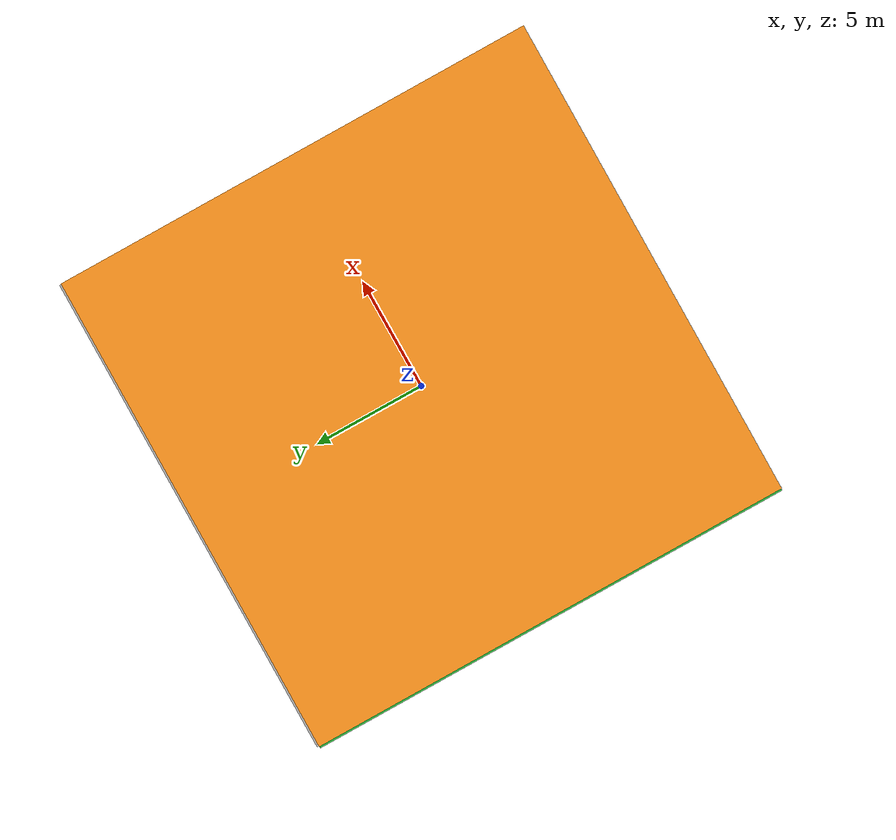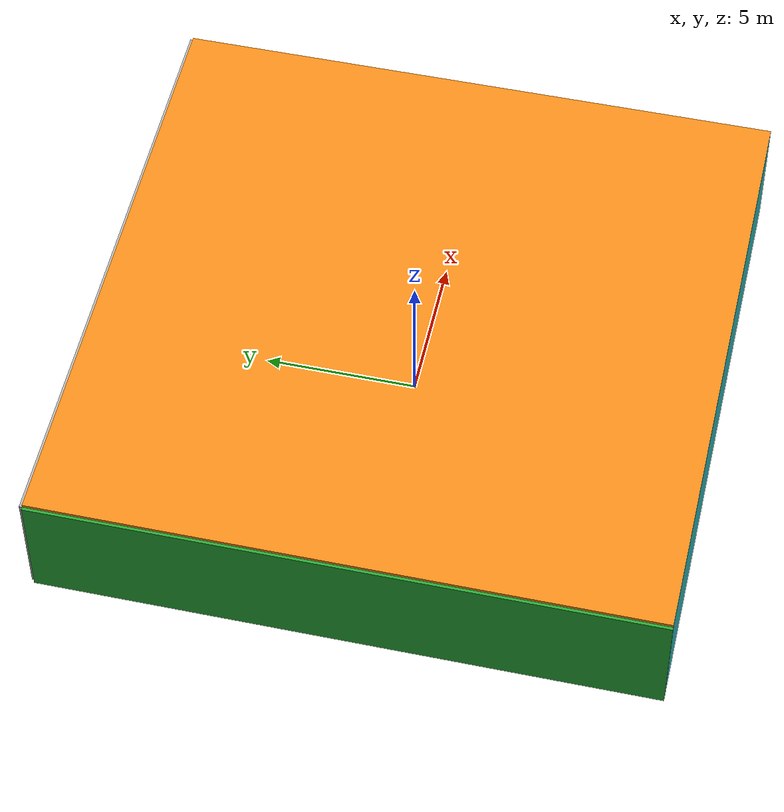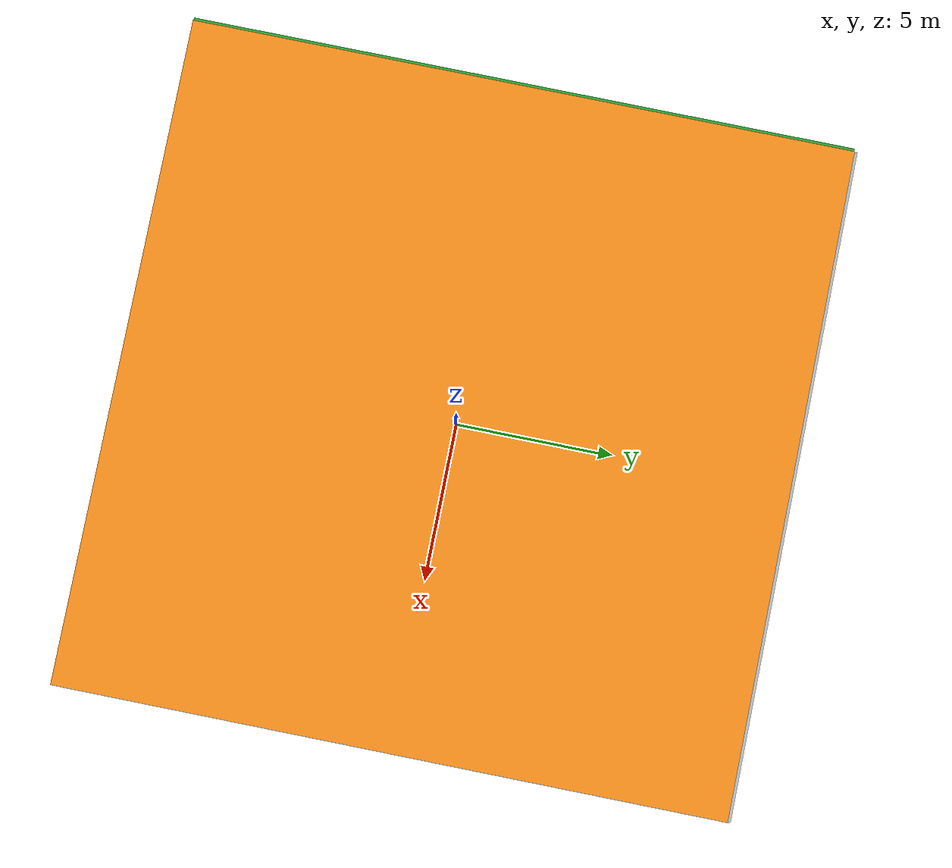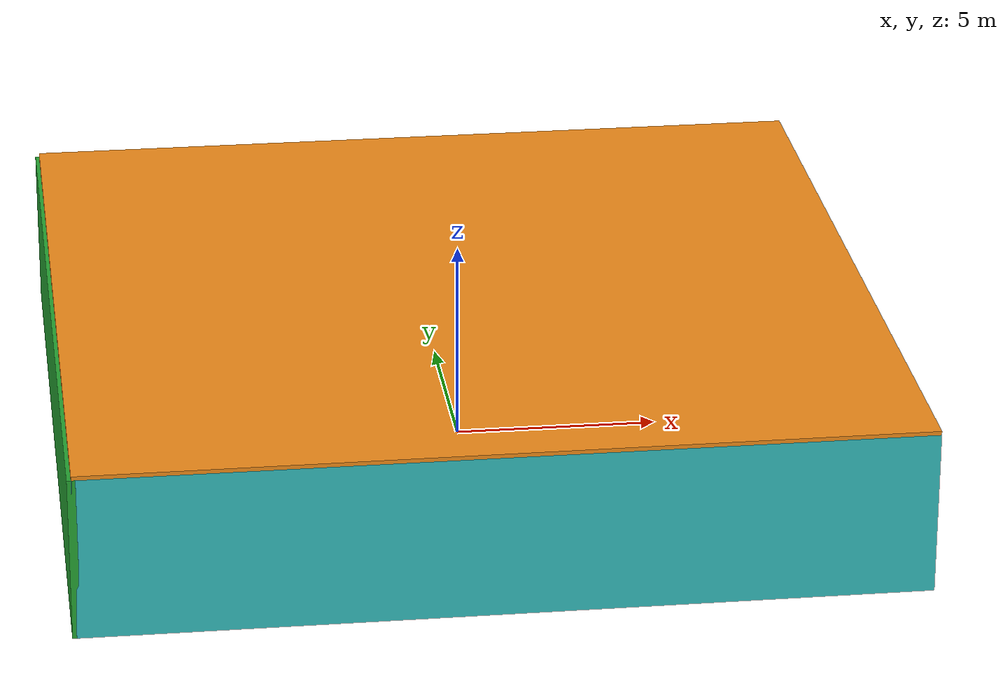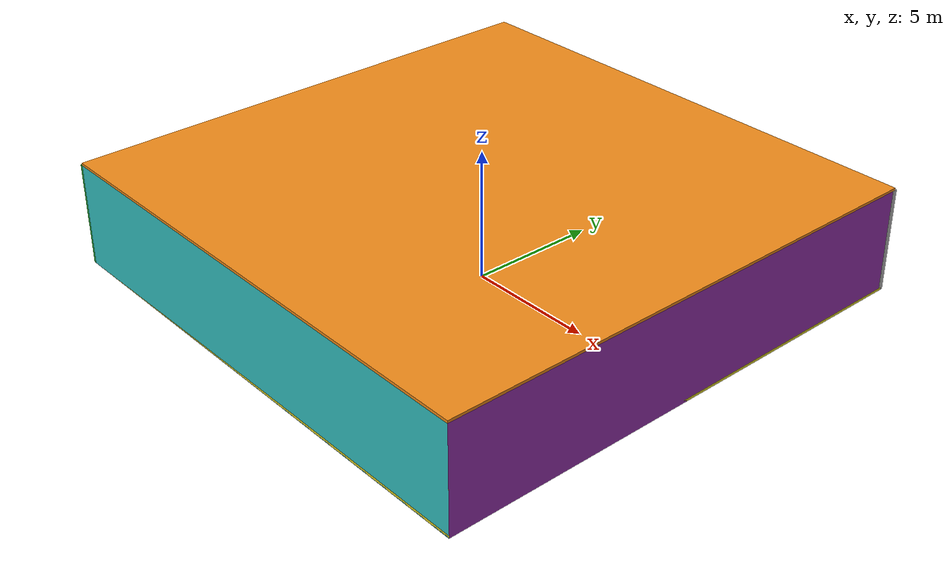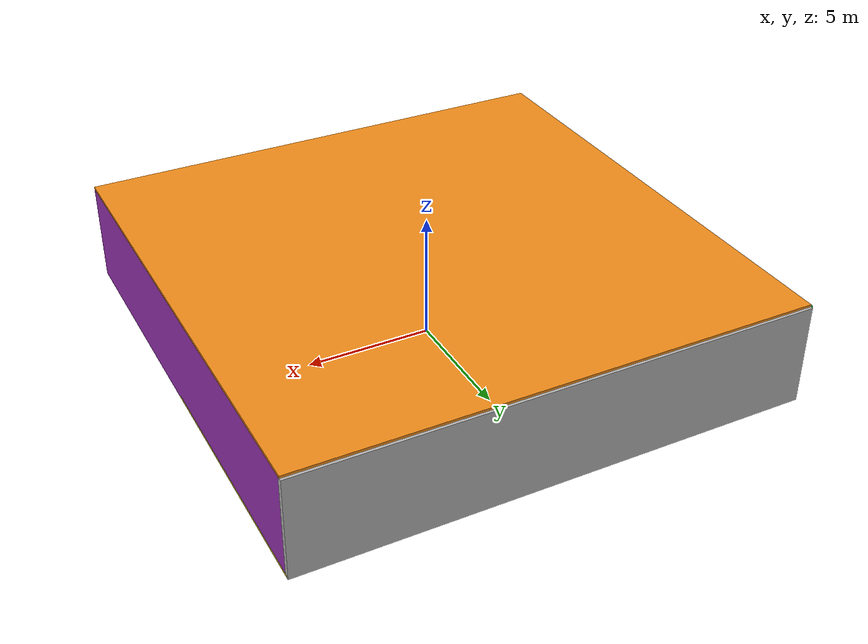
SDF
<sdf version="1.4">
 <world name="default">
  <physics type="ode">
   <max_step_size>0.001</max_step_size>
   <real_time_factor>1</real_time_factor>
   <real_time_update_rate>1000</real_time_update_rate>
   <gravity>0 0 -9.8</gravity>
  </physics>
  <scene><ambient>0.4 0.4 0.4 1</ambient><background>0.7 0.7 0.7 1</background><shadows>1</shadows></scene>
  <model name="Surrounding">
   <static>1</static>
   <link name="Ceiling">
    <collision name="Ceiling_Collision"><geometry><box><size>20 20 0.1</size></box></geometry></collision>
    <visual name="Ceiling_Visual">
     <geometry><box><size>20 20 0.1</size></box></geometry>
     <material>
      <script><uri>file://media/materials/scripts/gazebo.material</uri><name>Gazebo/Orange</name></script>
     </material>
    </visual>
    <pose>0 0 4.05 0 0 0</pose>
   </link>
   <link name="Wall_South">
    <collision name="Wall_South_Collision">
     <geometry><box><size>20 0 4</size></box></geometry>
     <pose>0 0 2 0 -0 0</pose>
    </collision>
    <visual name="Wall_South_Visual">
     <pose>0 0 2 0 -0 0</pose>
     <geometry><box><size>20 0 4</size></box></geometry>
     <material>
      <script><uri>file://media/materials/scripts/gazebo.material</uri><name>Gazebo/Turquoise</name></script>
     </material>
    </visual>
    <velocity_decay><linear>0</linear><angular>0</angular></velocity_decay>
    <pose>0 -10 0 0 -0 0</pose>
   </link>
   <link name="Wall_East">
    <collision name="Wall_21_Collision">
     <geometry><box><size>20 0 4</size></box></geometry>
     <pose>0 0 2 0 -0 0</pose>
    </collision>
    <visual name="Wall_21_Visual">
     <pose>0 0 2 0 -0 0</pose>
     <geometry><box><size>20 0 4</size></box></geometry>
     <material>
      <script><uri>file://media/materials/scripts/gazebo.material</uri><name>Gazebo/Purple</name></script>
     </material>
    </visual>
    <velocity_decay><linear>0</linear><angular>0</angular></velocity_decay>
    <pose>10 0 0 0 -0 1.5708</pose>
   </link>
   <link name="Wall_North">
    <collision name="Wall_22_Collision">
     <geometry><box><size>20 0.2 4</size></box></geometry>
     <pose>0 0 2 0 -0 0</pose>
    </collision>
    <visual name="Wall_22_Visual">
     <pose>0 0 2 0 -0 0</pose>
     <geometry><box><size>20 0.2 4</size></box></geometry>
     <material>
      <script><uri>file://media/materials/scripts/gazebo.material</uri><name>Gazebo/LightOn</name></script>
     </material>
    </visual>
    <velocity_decay><linear>0</linear><angular>0</angular></velocity_decay>
    <pose>0 10 0 0 -0 0</pose>
   </link>
   <link name="Wall_West">
    <collision name="Wall_23_Collision">
     <geometry><box><size>20 0.2 4</size></box></geometry>
     <pose>0 0 2 0 -0 0</pose>
    </collision>
    <visual name="Wall_23_Visual">
     <pose>0 0 2 0 -0 0</pose>
     <geometry><box><size>20 0.2 4</size></box></geometry>
     <material>
      <script><uri>file://media/materials/scripts/gazebo.material</uri><name>Gazebo/GreenGlow</name></script>
     </material>
    </visual>
    <velocity_decay><linear>0</linear><angular>0</angular></velocity_decay>
    <pose>-10 0 0 0 0 -1.5708</pose>
   </link>
   <link name="Ground_link">
    <collision name="collision">
     <pose>0 0 .05 0 -0 0</pose>
     <geometry><box><size>20 20 0.1</size></box></geometry>
    </collision>
    <visual name="visual">
     <pose>0 0 .05 0 -0 0</pose>
     <geometry><box><size>20 20 0.1</size></box></geometry>
     <material>
      <script><uri>file://media/materials/scripts/gazebo.material</uri><name>Gazebo/YellowGlow</name></script>
     </material>
    </visual>
   </link>
   <static>1</static>
  </model>
  <spherical_coordinates>
   <surface_model>EARTH_WGS84</surface_model>
   <latitude_deg>0</latitude_deg>
   <longitude_deg>0</longitude_deg>
   <elevation>0</elevation>
   <heading_deg>0</heading_deg>
  </spherical_coordinates>
  <light name="lightball_0" type="diffuse">
   <diffuse>0.8 0.8 0.8 1</diffuse>
   <specular>0.2 0.2 0.2 1</specular>
   <attenuation>
    <range>100</range>
    <constant>0.7</constant>
    <linear>0.01</linear>
    <quadratic>0.001</quadratic>
   </attenuation>
   <direction>-0.5 0.1 -0.9</direction>
   <pose>7.5910579565 3.08987628784 0.598709946082 0 0 0</pose>
  </light>
  <light name="lightball_1" type="diffuse">
   <diffuse>0.8 0.8 0.8 1</diffuse>
   <specular>0.2 0.2 0.2 1</specular>
   <attenuation>
    <range>100</range>
    <constant>0.7</constant>
    <linear>0.01</linear>
    <quadratic>0.001</quadratic>
   </attenuation>
   <direction>-0.5 0.1 -0.9</direction>
   <pose>1.69581976948 -3.53056954244 2.69899072991 0 0 0</pose>
  </light>
  <light name="lightball_2" type="diffuse">
   <diffuse>0.8 0.8 0.8 1</diffuse>
   <specular>0.2 0.2 0.2 1</specular>
   <attenuation>
    <range>100</range>
    <constant>0.7</constant>
    <linear>0.01</linear>
    <quadratic>0.001</quadratic>
   </attenuation>
   <direction>-0.5 0.1 -0.9</direction>
   <pose>8.78714782511 -6.95174858165 1.73721386285 0 0 0</pose>
  </light>
  <light name="lightball_3" type="diffuse">
   <diffuse>0.8 0.8 0.8 1</diffuse>
   <specular>0.2 0.2 0.2 1</specular>
   <attenuation>
    <range>100</range>
    <constant>0.7</constant>
    <linear>0.01</linear>
    <quadratic>0.001</quadratic>
   </attenuation>
   <direction>-0.5 0.1 -0.9</direction>
   <pose>-4.42782604553 7.48781871018 1.21039537975 0 0 0</pose>
  </light>
  <light name="lightball_4" type="diffuse">
   <diffuse>0.8 0.8 0.8 1</diffuse>
   <specular>0.2 0.2 0.2 1</specular>
   <attenuation>
    <range>100</range>
    <constant>0.7</constant>
    <linear>0.01</linear>
    <quadratic>0.001</quadratic>
   </attenuation>
   <direction>-0.5 0.1 -0.9</direction>
   <pose>6.25432734087 -6.39155436429 3.28187698721 0 0 0</pose>
  </light>
  <light name="lightball_5" type="diffuse">
   <diffuse>0.8 0.8 0.8 1</diffuse>
   <specular>0.2 0.2 0.2 1</specular>
   <attenuation>
    <range>100</range>
    <constant>0.7</constant>
    <linear>0.01</linear>
    <quadratic>0.001</quadratic>
   </attenuation>
   <direction>-0.5 0.1 -0.9</direction>
   <pose>2.74610282777 2.87439430016 1.11692643294 0 0 0</pose>
  </light>
  <light name="lightball_6" type="diffuse">
   <diffuse>0.8 0.8 0.8 1</diffuse>
   <specular>0.2 0.2 0.2 1</specular>
   <attenuation>
    <range>100</range>
    <constant>0.7</constant>
    <linear>0.01</linear>
    <quadratic>0.001</quadratic>
   </attenuation>
   <direction>-0.5 0.1 -0.9</direction>
   <pose>-1.57005712236 -7.19556414796 3.71465732633 0 0 0</pose>
  </light>
  <light name="lightball_7" type="diffuse">
   <diffuse>0.8 0.8 0.8 1</diffuse>
   <specular>0.2 0.2 0.2 1</specular>
   <attenuation>
    <range>100</range>
    <constant>0.7</constant>
    <linear>0.01</linear>
    <quadratic>0.001</quadratic>
   </attenuation>
   <direction>-0.5 0.1 -0.9</direction>
   <pose>6.54704364285 1.21916169681 1.45166867816 0 0 0</pose>
  </light>
  <light name="lightball_8" type="diffuse">
   <diffuse>0.8 0.8 0.8 1</diffuse>
   <specular>0.2 0.2 0.2 1</specular>
   <attenuation>
    <range>100</range>
    <constant>0.7</constant>
    <linear>0.01</linear>
    <quadratic>0.001</quadratic>
   </attenuation>
   <direction>-0.5 0.1 -0.9</direction>
   <pose>-1.39033211392 -2.04461945838 2.20080279617 0 0 0</pose>
  </light>
  <include><uri>model://cabinet</uri><pose>-7.09815027546 4.62114770222 0 0 0 0.948084116747</pose></include>
  <include><uri>model://cabinet</uri><pose>-3.9565600508 2.10504259461 0 0 0 0.316131501141</pose></include>
  <include><uri>model://cabinet</uri><pose>5.04378408076 -1.42482464398 0 0 0 0.601045147585</pose></include>
  <include><uri>model://cabinet</uri><pose>6.80752233488 -0.841822198647 0 0 0 1.46383835063</pose></include>
 </world>
</sdf>

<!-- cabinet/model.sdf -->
<sdf version="1.5">
  <model name="cabinet">
    <static>true</static>
    <link name="cabinet_bottom_plate">
      <inertial>
        <pose>0 0 -1 0 0 0</pose>
        <inertia>
          <ixx>2.050000</ixx>
          <ixy>0</ixy>
          <ixz>0</ixz>
          <iyy>2.050000</iyy>
          <iyz>0</iyz>
          <izz>2.050000</izz>
        </inertia>
        <mass>25.000000</mass>
      </inertial>
      <collision name="cabinet_bottom_plate_geom">
        <pose>0 0 0.010000 0 0 0</pose>
        <geometry>
          <box>
            <size>0.450000 0.450000 0.020000</size>
          </box>
        </geometry>
      </collision>
      <visual name="cabinet_bottom_plate_geom_visual">
        <pose>0 0 0.010000 0 0 0</pose>
        <geometry>
          <box>
            <size>0.450000 0.450000 0.020000</size>
          </box>
        </geometry>
        <material>
          <script>
            <uri>model://media/materials/scripts/gazebo.material</uri>
            <name>Gazebo/Wood</name>
          </script>
        </material>
      </visual>
      <collision name="cabinet_bottom_plate_geom_cabinet_back_plate">
        <pose>0.235000 0 0.510000 0 0 0</pose>
        <geometry>
          <box>
            <size>0.020000 0.450000 1.020000</size>
          </box>
        </geometry>
      </collision>
      <visual name="cabinet_bottom_plate_geom_cabinet_back_plate_visual">
        <pose>0.235000 0 0.510000 0 0 0</pose>
        <geometry>
          <box>
            <size>0.020000 0.450000 1.020000</size>
          </box>
        </geometry>
        <material>
          <script>
            <uri>model://media/materials/scripts/gazebo.material</uri>
            <name>Gazebo/Wood</name>
          </script>
        </material>
      </visual>
      <collision name="cabinet_bottom_plate_geom_cabinet_left_plate">
        <pose>0 0.235000 0.510000 0 0 0</pose>
        <geometry>
          <box>
            <size>0.450000 0.020000 1.020000</size>
          </box>
        </geometry>
      </collision>
      <visual name="cabinet_bottom_plate_geom_cabinet_left_plate_visual">
        <pose>0 0.235000 0.510000 0 0 0</pose>
        <geometry>
          <box>
            <size>0.450000 0.020000 1.020000</size>
          </box>
        </geometry>
        <material>
          <script>
            <uri>model://media/materials/scripts/gazebo.material</uri>
            <name>Gazebo/Wood</name>
          </script>
        </material>
      </visual>
      <collision name="cabinet_bottom_plate_geom_cabinet_middle_plate">
        <pose>0 0 0.510000 0 0 0</pose>
        <geometry>
          <box>
            <size>0.450000 0.450000 0.020000</size>
          </box>
        </geometry>
      </collision>
      <visual name="cabinet_bottom_plate_geom_cabinet_middle_plate_visual">
        <pose>0 0 0.510000 0 0 0</pose>
        <geometry>
          <box>
            <size>0.450000 0.450000 0.020000</size>
          </box>
        </geometry>
        <material>
          <script>
            <uri>model://media/materials/scripts/gazebo.material</uri>
            <name>Gazebo/Wood</name>
          </script>
        </material>
      </visual>
      <collision name="cabinet_bottom_plate_geom_cabinet_right_plate">
        <pose>0 -0.235000 0.510000 0 0 0</pose>
        <geometry>
          <box>
            <size>0.450000 0.020000 1.020000</size>
          </box>
        </geometry>
      </collision>
      <visual name="cabinet_bottom_plate_geom_cabinet_right_plate_visual">
        <pose>0 -0.235000 0.510000 0 0 0</pose>
        <geometry>
          <box>
            <size>0.450000 0.020000 1.020000</size>
          </box>
        </geometry>
        <material>
          <script>
            <uri>model://media/materials/scripts/gazebo.material</uri>
            <name>Gazebo/Wood</name>
          </script>
        </material>
      </visual>
      <collision name="cabinet_bottom_plate_geom_cabinet_top_plate">
        <pose>0 0 1.010000 0 0 0</pose>
        <geometry>
          <box>
            <size>0.450000 0.450000 0.020000</size>
          </box>
        </geometry>
      </collision>
      <visual name="cabinet_bottom_plate_geom_cabinet_top_plate_visual">
        <pose>0 0 1.010000 0 0 0</pose>
        <geometry>
          <box>
            <size>0.450000 0.450000 0.020000</size>
          </box>
        </geometry>
        <material>
          <script>
            <uri>model://media/materials/scripts/gazebo.material</uri>
            <name>Gazebo/Wood</name>
          </script>
        </material>
      </visual>
    </link>
  </model>
</sdf>
